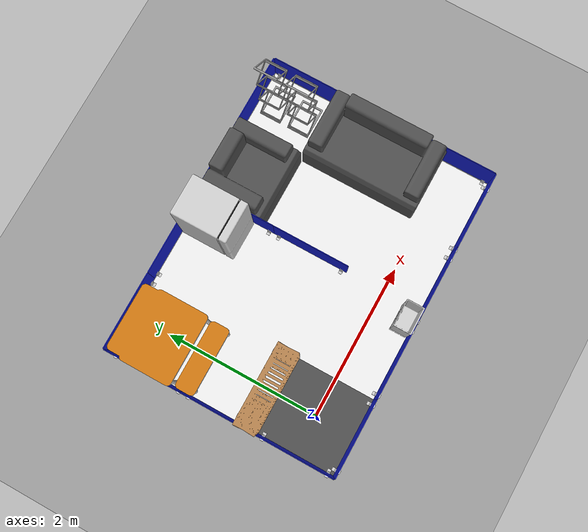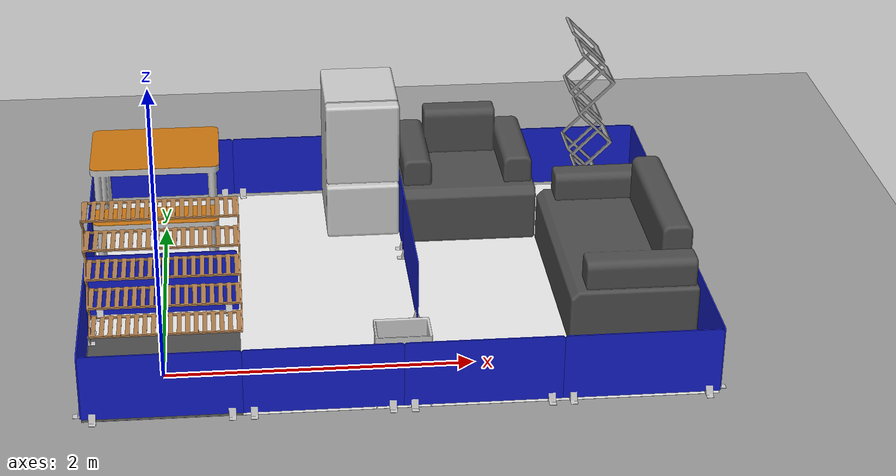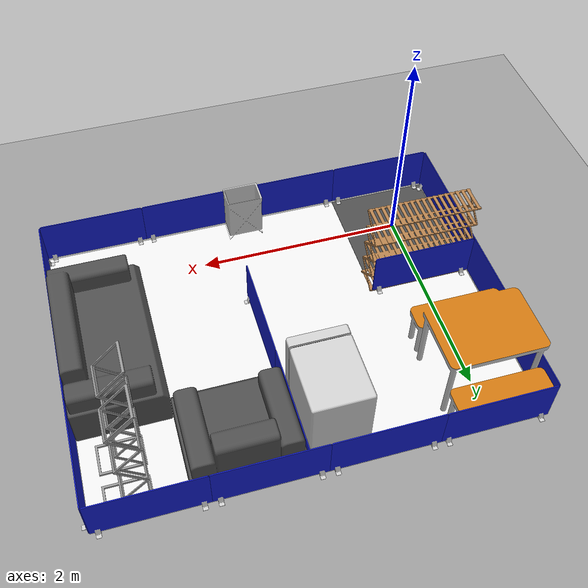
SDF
<?xml version="1.0" ?>

<sdf version="1.5">

  <world name="rgiro_mobile_demo">

    <scene>
      <ambient>0.6 0.6 0.6 1</ambient>
      <sky>
        <sunrise />
        <clouds>
          <speed>0.6</speed>
        </clouds>
      </sky>
    </scene>

    <physics type="ode">
      <max_step_size>0.001</max_step_size>
      <real_time_factor>1</real_time_factor>
      <real_time_update_rate>1000</real_time_update_rate>
      <gravity>0 0 -9.8</gravity>
    </physics>

    <include>
      <uri>model://sun</uri>
    </include>

    <!-- Room: begin. -->

    <include>
      <uri>model://rgiro_demo_floor_home</uri>
    </include>

    <include>
      <uri>model://rgiro_demo_floor_inside</uri>
      <pose>1.5 1 -0.001 0 0 0</pose>
    </include>

    <include>
      <uri>model://rgiro_demo_floor_outside</uri>
      <pose>1.5 1 -0.002 0 0 0</pose>
    </include>

    <model name="rgiro_sanwa_partition_a">
      <include>
        <uri>model://rgiro_sanwa_partition</uri>
        <pose>-0.5045 0 0 0 0 0</pose>
      </include>
    </model>

    <model name="rgiro_sanwa_partition_b">
      <include>
        <uri>model://rgiro_sanwa_partition</uri>
        <pose>-0.5045 1 0 0 0 0</pose>
      </include>
    </model>

    <model name="rgiro_sanwa_partition_c">
      <include>
        <uri>model://rgiro_sanwa_partition</uri>
        <pose>-0.5045 2 0 0 0 0</pose>
      </include>
    </model>

    <model name="rgiro_sanwa_partition_d">
      <include>
        <uri>model://rgiro_sanwa_partition</uri>
        <pose>3.5045 0 0 0 0 0</pose>
      </include>
    </model>

    <model name="rgiro_sanwa_partition_e">
      <include>
        <uri>model://rgiro_sanwa_partition</uri>
        <pose>3.5045 1 0 0 0 0</pose>
      </include>
    </model>

    <model name="rgiro_sanwa_partition_f">
      <include>
        <uri>model://rgiro_sanwa_partition</uri>
        <pose>3.5045 2 0 0 0 0</pose>
      </include>
    </model>

    <model name="rgiro_sanwa_partition_g">
      <include>
        <uri>model://rgiro_sanwa_partition</uri>
        <pose>0 -0.5045 0 0 0 1.57079632679</pose>
      </include>
    </model>

    <model name="rgiro_sanwa_partition_h">
      <include>
        <uri>model://rgiro_sanwa_partition</uri>
        <pose>1 -0.5045 0 0 0 1.57079632679</pose>
      </include>
    </model>

    <model name="rgiro_sanwa_partition_i">
      <include>
        <uri>model://rgiro_sanwa_partition</uri>
        <pose>2 -0.5045 0 0 0 1.57079632679</pose>
      </include>
    </model>

    <model name="rgiro_sanwa_partition_j">
      <include>
        <uri>model://rgiro_sanwa_partition</uri>
        <pose>3 -0.5045 0 0 0 1.57079632679</pose>
      </include>
    </model>

    <model name="rgiro_sanwa_partition_k">
      <include>
        <uri>model://rgiro_sanwa_partition</uri>
        <pose>0 2.5045 0 0 0 1.57079632679</pose>
      </include>
    </model>

    <model name="rgiro_sanwa_partition_l">
      <include>
        <uri>model://rgiro_sanwa_partition</uri>
        <pose>1 2.5045 0 0 0 1.57079632679</pose>
      </include>
    </model>

    <model name="rgiro_sanwa_partition_m">
      <include>
        <uri>model://rgiro_sanwa_partition</uri>
        <pose>2 2.5045 0 0 0 1.57079632679</pose>
      </include>
    </model>

    <model name="rgiro_sanwa_partition_n">
      <include>
        <uri>model://rgiro_sanwa_partition</uri>
        <pose>3 2.5045 0 0 0 1.57079632679</pose>
      </include>
    </model>

    <model name="rgiro_sanwa_partition_o">
      <include>
        <uri>model://rgiro_sanwa_partition</uri>
        <pose>0 0.7745 0 0 0 1.57079632679</pose>
      </include>
    </model>

    <model name="rgiro_sanwa_partition_p">
      <include>
        <uri>model://rgiro_sanwa_partition</uri>
        <pose>1.6855 1 0 0 0 0</pose>
      </include>
    </model>

    <model name="rgiro_sanwa_partition_q">
      <include>
        <uri>model://rgiro_sanwa_partition</uri>
        <pose>1.6855 2 0 0 0 0</pose>
      </include>
    </model>

    <!-- Room: end. -->

    <!-- Furniture: begin. -->

    <include>
      <uri>model://rgiro_yamazen_sofa_single</uri>
      <pose>2.17 2.075 0 0 0 -1.57079632679</pose>
    </include>

    <include>
      <uri>model://rgiro_yamazen_sofa_double</uri>
      <pose>3.075 0.89 0 0 0 3.14159265359</pose>
    </include>

    <include>
      <uri>model://rgiro_akozlin_shelf</uri>
      <pose>0.01 0.635 0 0 0 1.57079632679</pose>
    </include>

    <include>
      <uri>model://rgiro_quickcamp_table</uri>
      <pose>-0.05 1.92 0 0 0 1.57079632679</pose>
    </include>

    <include>
      <uri>model://rgiro_astro_laundry_bag</uri>
      <pose>1.5 -0.385 0 0 0 1.57079632679</pose>
    </include>

    <include>
      <uri>model://rgiro_generic_refrigerator</uri>
      <pose>1.421 2.14 0 0 0 -1.57079632679</pose>
    </include>

    <model name="rgiro_haitian_magazine_rack_a">
      <include>
        <uri>model://rgiro_haitian_magazine_rack</uri>
        <pose>3.15 1.88 0 0 0 0</pose>
      </include>
    </model>

    <model name="rgiro_haitian_magazine_rack_b">
      <include>
        <uri>model://rgiro_haitian_magazine_rack</uri>
        <pose>3.15 2.27 0 0 0 0</pose>
      </include>
    </model>

    <!-- Furniture: end. -->

  </world>

</sdf>

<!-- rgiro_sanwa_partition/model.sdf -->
<sdf version="1.5">
  <model name="rgiro_sanwa_partition">
    <static>1</static>
    <link name="link">
      <visual name="visual">
        <geometry>
          <mesh>
            <uri>model://rgiro_sanwa_partition/meshes/rgiro_sanwa_partition.dae</uri>
          </mesh>
        </geometry>
      </visual>
      <collision name="collision">
        <geometry>
          <mesh>
            <uri>model://rgiro_sanwa_partition/meshes/rgiro_sanwa_partition.dae</uri>
          </mesh>
        </geometry>
      </collision>
    </link>
  </model>
</sdf>

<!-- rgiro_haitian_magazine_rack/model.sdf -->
<sdf version="1.5">
  <model name="rgiro_haitian_magazine_rack">
    <static>1</static>
    <link name="link">
      <visual name="visual">
        <geometry>
          <mesh>
            <uri>model://rgiro_haitian_magazine_rack/meshes/rgiro_haitian_magazine_rack.dae</uri>
          </mesh>
        </geometry>
        <material>
          <script>
            <uri>file://media/materials/scripts/gazebo.material</uri>
            <name>Gazebo/Grey</name>
          </script>
        </material>
      </visual>
      <collision name="collision">
        <geometry>
          <mesh>
            <uri>model://rgiro_haitian_magazine_rack/meshes/rgiro_haitian_magazine_rack.dae</uri>
          </mesh>
        </geometry>
      </collision>
    </link>
  </model>
</sdf>

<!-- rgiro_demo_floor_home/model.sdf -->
<sdf version="1.5">
  <model name="rgiro_demo_floor_home">
    <static>1</static>
    <link name="link">
      <visual name="visual">
        <geometry>
          <box>
            <size>1 1 0.002</size>
          </box>
        </geometry>
        <material>
          <script>
            <uri>file://media/materials/scripts/gazebo.material</uri>
            <name>Gazebo/DarkGrey</name>
          </script>
        </material>
      </visual>
    </link>
  </model>
</sdf>

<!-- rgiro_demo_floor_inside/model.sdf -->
<sdf version="1.5">
  <model name="rgiro_demo_floor_inside">
    <static>1</static>
    <link name="link">
      <visual name="visual">
        <geometry>
          <box>
            <size>4 3 0.002</size>
          </box>
        </geometry>
        <material>
          <script>
            <uri>file://media/materials/scripts/gazebo.material</uri>
            <name>Gazebo/White</name>
          </script>
        </material>
      </visual>
      <collision name="collision">
        <geometry>
          <box>
            <size>4 3 0.002</size>
          </box>
        </geometry>
      </collision>
    </link>
  </model>
</sdf>

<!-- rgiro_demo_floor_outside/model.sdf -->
<sdf version="1.5">
  <model name="rgiro_demo_floor_outside">
    <static>1</static>
    <link name="link">
      <visual name="visual">
        <geometry>
          <box>
            <size>12 9 0.002</size>
          </box>
        </geometry>
        <material>
          <script>
            <uri>file://media/materials/scripts/gazebo.material</uri>
            <name>Gazebo/Grey</name>
          </script>
        </material>
      </visual>
      <collision name="collision">
        <geometry>
          <box>
            <size>12 9 0.002</size>
          </box>
        </geometry>
      </collision>
    </link>
  </model>
</sdf>

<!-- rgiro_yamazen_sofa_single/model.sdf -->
<sdf version="1.5">
  <model name="rgiro_yamazen_sofa_single">
    <static>1</static>
    <link name="link">
      <visual name="visual">
        <geometry>
          <mesh>
            <uri>model://rgiro_yamazen_sofa_single/meshes/rgiro_yamazen_sofa_single.dae</uri>
          </mesh>
        </geometry>
        <material>
          <script>
            <uri>file://media/materials/scripts/gazebo.material</uri>
            <name>Gazebo/DarkGrey</name>
          </script>
        </material>
      </visual>
      <collision name="collision">
        <geometry>
          <mesh>
            <uri>model://rgiro_yamazen_sofa_single/meshes/rgiro_yamazen_sofa_single.dae</uri>
          </mesh>
        </geometry>
      </collision>
    </link>
  </model>
</sdf>

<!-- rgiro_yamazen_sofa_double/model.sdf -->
<sdf version="1.5">
  <model name="rgiro_yamazen_sofa_double">
    <static>1</static>
    <link name="link">
      <visual name="visual">
        <geometry>
          <mesh>
            <uri>model://rgiro_yamazen_sofa_double/meshes/rgiro_yamazen_sofa_double.dae</uri>
          </mesh>
        </geometry>
        <material>
          <script>
            <uri>file://media/materials/scripts/gazebo.material</uri>
            <name>Gazebo/DarkGrey</name>
          </script>
        </material>
      </visual>
      <collision name="collision">
        <geometry>
          <mesh>
            <uri>model://rgiro_yamazen_sofa_double/meshes/rgiro_yamazen_sofa_double.dae</uri>
          </mesh>
        </geometry>
      </collision>
    </link>
  </model>
</sdf>

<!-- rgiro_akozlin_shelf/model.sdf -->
<sdf version="1.5">
  <model name="rgiro_akozlin_shelf">
    <static>1</static>
    <link name="link">
      <visual name="visual">
        <geometry>
          <mesh>
            <uri>model://rgiro_akozlin_shelf/meshes/rgiro_akozlin_shelf.dae</uri>
          </mesh>
        </geometry>
        <material>
          <script>
            <uri>file://media/materials/scripts/gazebo.material</uri>
            <name>Gazebo/Wood</name>
          </script>
        </material>
      </visual>
      <collision name="collision">
        <geometry>
          <mesh>
            <uri>model://rgiro_akozlin_shelf/meshes/rgiro_akozlin_shelf.dae</uri>
          </mesh>
        </geometry>
      </collision>
    </link>
  </model>
</sdf>

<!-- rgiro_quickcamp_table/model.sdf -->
<sdf version="1.5">
  <model name="rgiro_quickcamp_table">
    <static>1</static>
    <link name="link">
      <visual name="visual">
        <geometry>
          <mesh>
            <uri>model://rgiro_quickcamp_table/meshes/rgiro_quickcamp_table.dae</uri>
          </mesh>
        </geometry>
      </visual>
      <collision name="collision">
        <geometry>
          <mesh>
            <uri>model://rgiro_quickcamp_table/meshes/rgiro_quickcamp_table.dae</uri>
          </mesh>
        </geometry>
      </collision>
    </link>
  </model>
</sdf>

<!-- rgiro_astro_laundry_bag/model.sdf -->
<sdf version="1.5">
  <model name="rgiro_astro_laundry_bag">
    <static>1</static>
    <link name="link">
      <visual name="visual">
        <geometry>
          <mesh>
            <uri>model://rgiro_astro_laundry_bag/meshes/rgiro_astro_laundry_bag.dae</uri>
          </mesh>
        </geometry>
      </visual>
      <collision name="collision">
        <geometry>
          <mesh>
            <uri>model://rgiro_astro_laundry_bag/meshes/rgiro_astro_laundry_bag.dae</uri>
          </mesh>
        </geometry>
      </collision>
    </link>
  </model>
</sdf>

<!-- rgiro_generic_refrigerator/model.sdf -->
<sdf version="1.5">
  <model name="rgiro_generic_refrigerator">
    <static>1</static>
    <link name="link">
      <visual name="visual">
        <geometry>
          <mesh>
            <uri>model://rgiro_generic_refrigerator/meshes/rgiro_generic_refrigerator.dae</uri>
          </mesh>
        </geometry>
      </visual>
      <collision name="collision">
        <geometry>
          <mesh>
            <uri>model://rgiro_generic_refrigerator/meshes/rgiro_generic_refrigerator.dae</uri>
          </mesh>
        </geometry>
      </collision>
    </link>
  </model>
</sdf>
